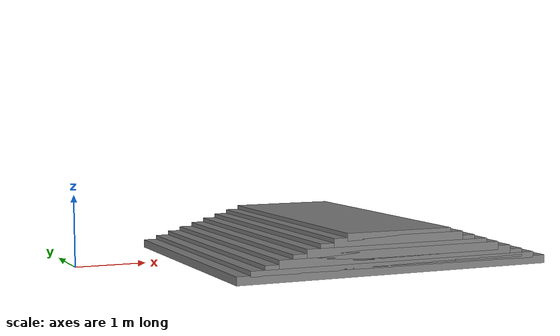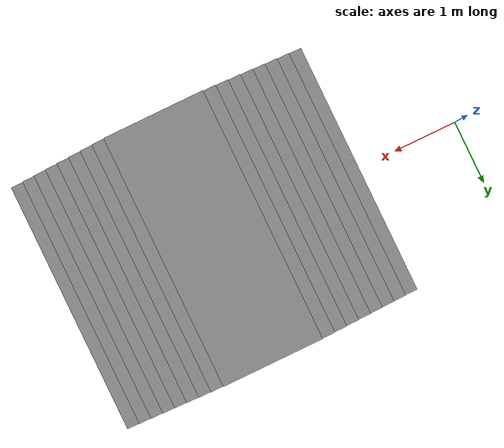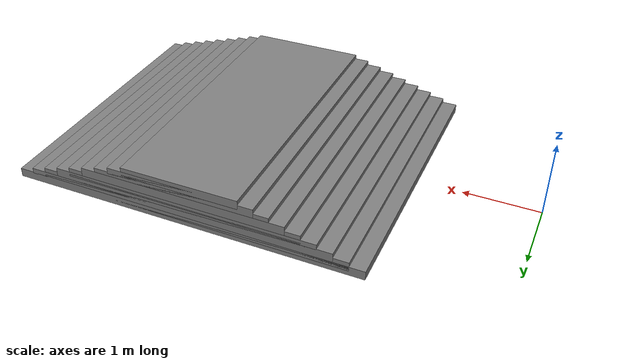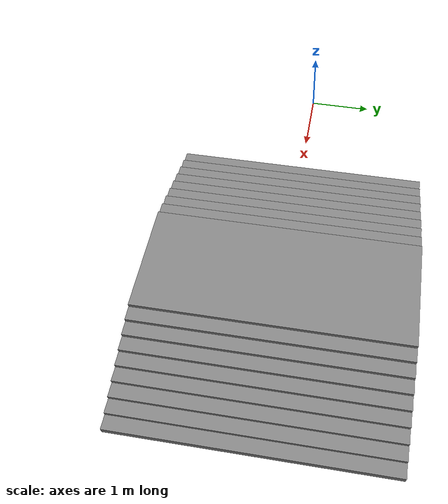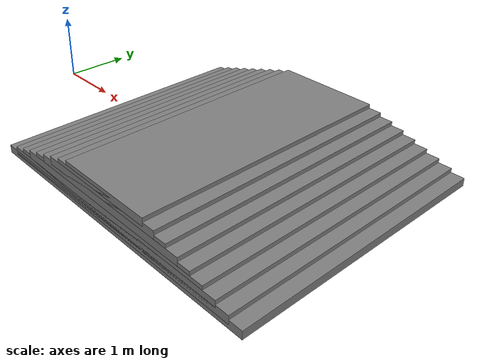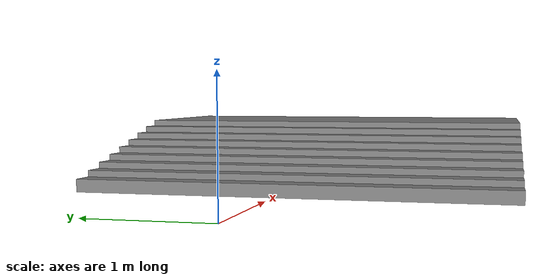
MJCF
<mujoco model="a1 scene">

    <worldbody>
        <geom name="stairs_1" size="2.4 2 0.06" pos="4 0 0.0" type="box"/>
    </worldbody>
    <worldbody>
        <geom name="stairs_2" size="2.2 2 0.06" pos="4 0 0.06" type="box"/>
    </worldbody>
    <worldbody>
        <geom name="stairs_3" size="2.0 2 0.06" pos="4 0 0.12" type="box"/>
    </worldbody>
    <worldbody>
        <geom name="stairs_4" size="1.8 2 0.06" pos="4 0 0.18" type="box"/>
    </worldbody>
    <worldbody>
        <geom name="stairs_5" size="1.6 2 0.06" pos="4 0 0.24" type="box"/>
    </worldbody>
    <worldbody>
        <geom name="stairs_6" size="1.4 2 0.06" pos="4 0 0.30" type="box"/>
    </worldbody>
    <worldbody>
        <geom name="stairs_7" size="1.2 2 0.06" pos="4 0 0.36" type="box"/>
    </worldbody>
    <worldbody>
        <geom name="stairs_8" size="1.0 2 0.06" pos="4 0 0.42" type="box"/>
    </worldbody>
    <worldbody>
        <geom name="stairs_9" size="0.8 2 0.06" pos="4 0 0.48" type="box"/>
    </worldbody>

</mujoco>
